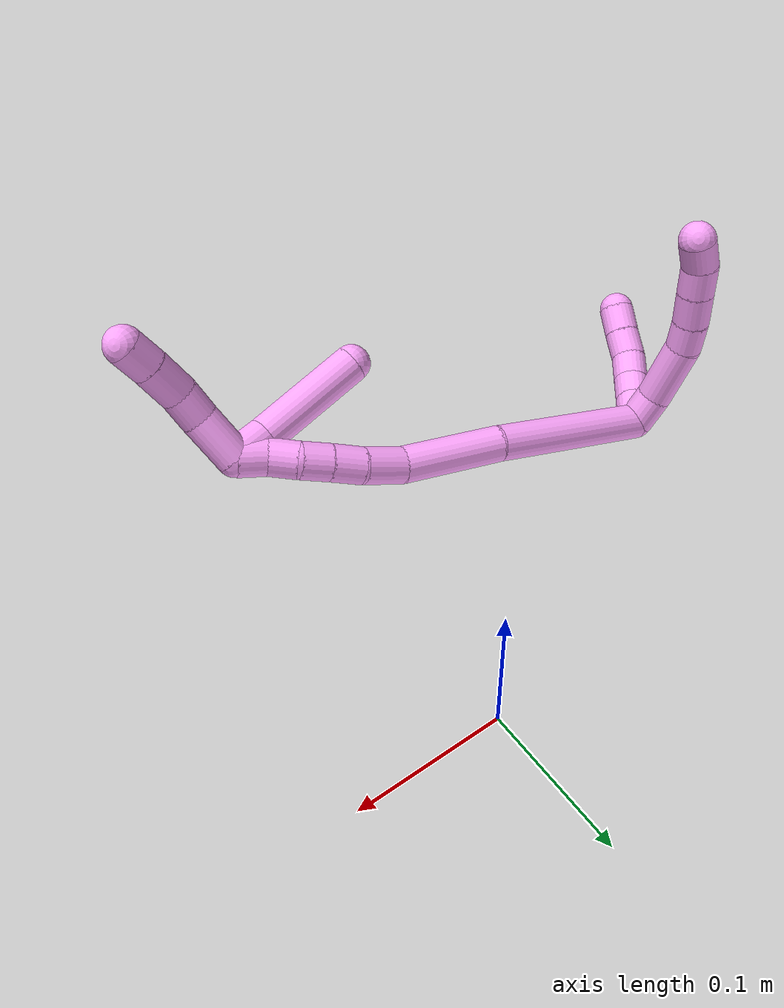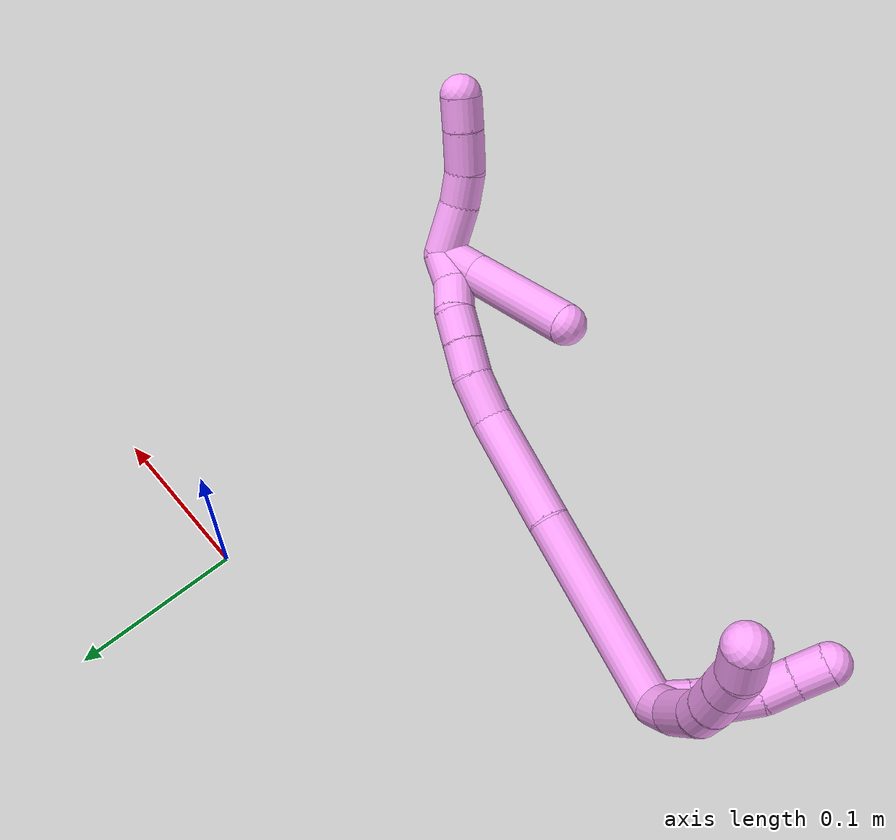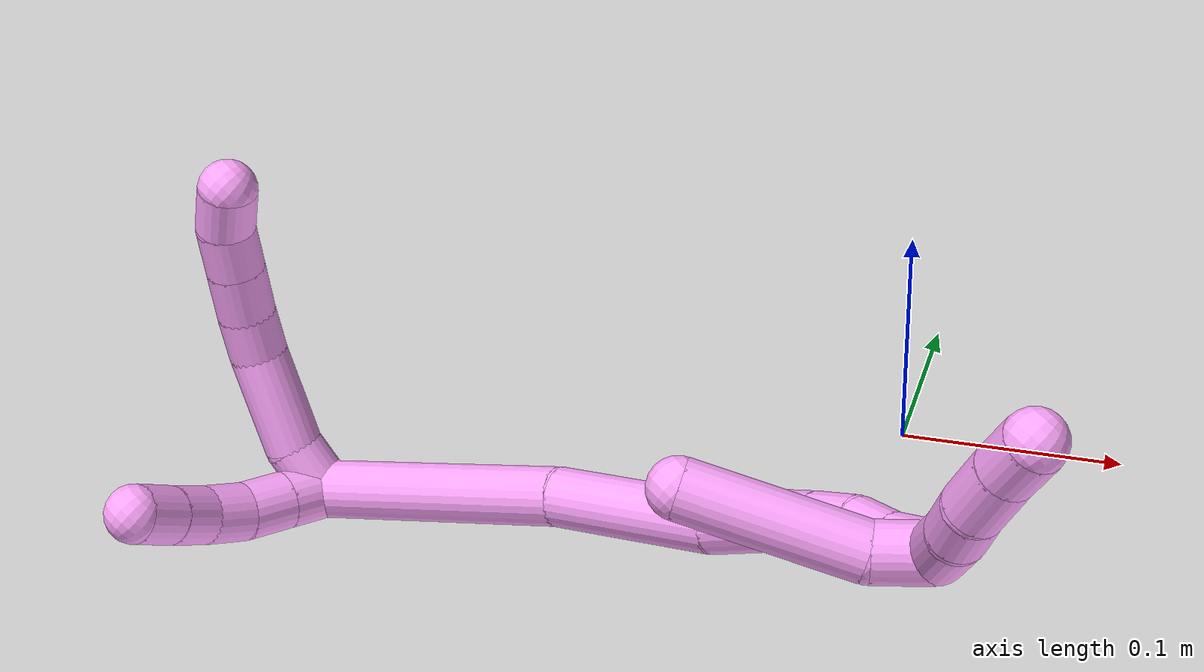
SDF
<sdf version="1.7">
 <world name="default">
  <model name="4">
   <static>0</static>
   <link name="4">
    <collision name="collision-cylinder-e_1_2_8">
     <pose>-0.009854 0.005466 -0.002407 -1.98564 -1.02585 1.42449</pose>
     <geometry><cylinder><radius>0.0125</radius><length>0.023045</length></cylinder></geometry>
     <surface>
      <friction><ode><mu>1.16</mu><mu2>1.16</mu2><slip1>0</slip1><slip2>0</slip2></ode></friction>
      <contact><ode><kp>1e+06</kp><kd>1</kd><max_vel>0</max_vel><min_depth>0.001</min_depth></ode></contact>
     </surface>
    </collision>
    <visual name="visual-cylinder-e_1_2_8">
     <pose>-0.009854 0.005466 -0.002407 -1.98564 -1.02585 1.42449</pose>
     <geometry><cylinder><radius>0.0125</radius><length>0.023045</length></cylinder></geometry>
     <material><ambient>1 0.65098 0.996078 1</ambient></material>
    </visual>
    <collision name="collision-cylinder-e_2_8_9">
     <pose>-0.035614 0.022244 -0.01481 -2.29449 -0.811592 1.52266</pose>
     <geometry><cylinder><radius>0.0125</radius><length>0.043858</length></cylinder></geometry>
     <surface>
      <friction><ode><mu>1.16</mu><mu2>1.16</mu2><slip1>0</slip1><slip2>0</slip2></ode></friction>
      <contact><ode><kp>1e+06</kp><kd>1</kd><max_vel>0</max_vel><min_depth>0.001</min_depth></ode></contact>
     </surface>
    </collision>
    <visual name="visual-cylinder-e_2_8_9">
     <pose>-0.035614 0.022244 -0.01481 -2.29449 -0.811592 1.52266</pose>
     <geometry><cylinder><radius>0.0125</radius><length>0.043858</length></cylinder></geometry>
     <material><ambient>1 0.65098 0.996078 1</ambient></material>
    </visual>
    <collision name="collision-cylinder-e_3_9_10">
     <pose>-0.057041 0.040312 -0.029874 -2.21446 -0.578881 1.07454</pose>
     <geometry><cylinder><radius>0.0125</radius><length>0.02018</length></cylinder></geometry>
     <surface>
      <friction><ode><mu>1.16</mu><mu2>1.16</mu2><slip1>0</slip1><slip2>0</slip2></ode></friction>
      <contact><ode><kp>1e+06</kp><kd>1</kd><max_vel>0</max_vel><min_depth>0.001</min_depth></ode></contact>
     </surface>
    </collision>
    <visual name="visual-cylinder-e_3_9_10">
     <pose>-0.057041 0.040312 -0.029874 -2.21446 -0.578881 1.07454</pose>
     <geometry><cylinder><radius>0.0125</radius><length>0.02018</length></cylinder></geometry>
     <material><ambient>1 0.65098 0.996078 1</ambient></material>
    </visual>
    <collision name="collision-cylinder-e_4_10_11">
     <pose>-0.067599 0.055108 -0.040801 -2.20051 -0.468732 0.877725</pose>
     <geometry><cylinder><radius>0.0125</radius><length>0.022302</length></cylinder></geometry>
     <surface>
      <friction><ode><mu>1.16</mu><mu2>1.16</mu2><slip1>0</slip1><slip2>0</slip2></ode></friction>
      <contact><ode><kp>1e+06</kp><kd>1</kd><max_vel>0</max_vel><min_depth>0.001</min_depth></ode></contact>
     </surface>
    </collision>
    <visual name="visual-cylinder-e_4_10_11">
     <pose>-0.067599 0.055108 -0.040801 -2.20051 -0.468732 0.877725</pose>
     <geometry><cylinder><radius>0.0125</radius><length>0.022302</length></cylinder></geometry>
     <material><ambient>1 0.65098 0.996078 1</ambient></material>
    </visual>
    <collision name="collision-cylinder-e_5_11_12">
     <pose>-0.077278 0.070477 -0.05198 -2.19871 -0.473647 0.884354</pose>
     <geometry><cylinder><radius>0.0125</radius><length>0.020353</length></cylinder></geometry>
     <surface>
      <friction><ode><mu>1.16</mu><mu2>1.16</mu2><slip1>0</slip1><slip2>0</slip2></ode></friction>
      <contact><ode><kp>1e+06</kp><kd>1</kd><max_vel>0</max_vel><min_depth>0.001</min_depth></ode></contact>
     </surface>
    </collision>
    <visual name="visual-cylinder-e_5_11_12">
     <pose>-0.077278 0.070477 -0.05198 -2.19871 -0.473647 0.884354</pose>
     <geometry><cylinder><radius>0.0125</radius><length>0.020353</length></cylinder></geometry>
     <material><ambient>1 0.65098 0.996078 1</ambient></material>
    </visual>
    <collision name="collision-cylinder-e_6_12_6">
     <pose>-0.083876 0.085197 -0.063946 -2.30317 -0.194307 0.430626</pose>
     <geometry><cylinder><radius>0.0125</radius><length>0.020262</length></cylinder></geometry>
     <surface>
      <friction><ode><mu>1.16</mu><mu2>1.16</mu2><slip1>0</slip1><slip2>0</slip2></ode></friction>
      <contact><ode><kp>1e+06</kp><kd>1</kd><max_vel>0</max_vel><min_depth>0.001</min_depth></ode></contact>
     </surface>
    </collision>
    <visual name="visual-cylinder-e_6_12_6">
     <pose>-0.083876 0.085197 -0.063946 -2.30317 -0.194307 0.430626</pose>
     <geometry><cylinder><radius>0.0125</radius><length>0.020262</length></cylinder></geometry>
     <material><ambient>1 0.65098 0.996078 1</ambient></material>
    </visual>
    <collision name="collision-cylinder-e_1_2_13">
     <pose>-0.002357 0.006802 0.006941 -0.775311 -0.237922 0.097531</pose>
     <geometry><cylinder><radius>0.0125</radius><length>0.02</length></cylinder></geometry>
     <surface>
      <friction><ode><mu>1.16</mu><mu2>1.16</mu2><slip1>0</slip1><slip2>0</slip2></ode></friction>
      <contact><ode><kp>1e+06</kp><kd>1</kd><max_vel>0</max_vel><min_depth>0.001</min_depth></ode></contact>
     </surface>
    </collision>
    <visual name="visual-cylinder-e_1_2_13">
     <pose>-0.002357 0.006802 0.006941 -0.775311 -0.237922 0.097531</pose>
     <geometry><cylinder><radius>0.0125</radius><length>0.02</length></cylinder></geometry>
     <material><ambient>1 0.65098 0.996078 1</ambient></material>
    </visual>
    <collision name="collision-cylinder-e_2_13_14">
     <pose>-0.007015 0.020452 0.020796 -0.780517 -0.232263 0.095901</pose>
     <geometry><cylinder><radius>0.0125</radius><length>0.02</length></cylinder></geometry>
     <surface>
      <friction><ode><mu>1.16</mu><mu2>1.16</mu2><slip1>0</slip1><slip2>0</slip2></ode></friction>
      <contact><ode><kp>1e+06</kp><kd>1</kd><max_vel>0</max_vel><min_depth>0.001</min_depth></ode></contact>
     </surface>
    </collision>
    <visual name="visual-cylinder-e_2_13_14">
     <pose>-0.007015 0.020452 0.020796 -0.780517 -0.232263 0.095901</pose>
     <geometry><cylinder><radius>0.0125</radius><length>0.02</length></cylinder></geometry>
     <material><ambient>1 0.65098 0.996078 1</ambient></material>
    </visual>
    <collision name="collision-cylinder-e_3_14_15">
     <pose>-0.012098 0.035369 0.032921 -0.997467 -0.281774 0.154188</pose>
     <geometry><cylinder><radius>0.0125</radius><length>0.02</length></cylinder></geometry>
     <surface>
      <friction><ode><mu>1.16</mu><mu2>1.16</mu2><slip1>0</slip1><slip2>0</slip2></ode></friction>
      <contact><ode><kp>1e+06</kp><kd>1</kd><max_vel>0</max_vel><min_depth>0.001</min_depth></ode></contact>
     </surface>
    </collision>
    <visual name="visual-cylinder-e_3_14_15">
     <pose>-0.012098 0.035369 0.032921 -0.997467 -0.281774 0.154188</pose>
     <geometry><cylinder><radius>0.0125</radius><length>0.02</length></cylinder></geometry>
     <material><ambient>1 0.65098 0.996078 1</ambient></material>
    </visual>
    <collision name="collision-cylinder-e_4_15_16">
     <pose>-0.016475 0.052756 0.041395 -1.23393 -0.160344 0.113859</pose>
     <geometry><cylinder><radius>0.0125</radius><length>0.02</length></cylinder></geometry>
     <surface>
      <friction><ode><mu>1.16</mu><mu2>1.16</mu2><slip1>0</slip1><slip2>0</slip2></ode></friction>
      <contact><ode><kp>1e+06</kp><kd>1</kd><max_vel>0</max_vel><min_depth>0.001</min_depth></ode></contact>
     </surface>
    </collision>
    <visual name="visual-cylinder-e_4_15_16">
     <pose>-0.016475 0.052756 0.041395 -1.23393 -0.160344 0.113859</pose>
     <geometry><cylinder><radius>0.0125</radius><length>0.02</length></cylinder></geometry>
     <material><ambient>1 0.65098 0.996078 1</ambient></material>
    </visual>
    <collision name="collision-cylinder-e_5_16_5">
     <pose>-0.020037 0.07134 0.047859 -1.23817 -0.197843 0.141196</pose>
     <geometry><cylinder><radius>0.0125</radius><length>0.02</length></cylinder></geometry>
     <surface>
      <friction><ode><mu>1.16</mu><mu2>1.16</mu2><slip1>0</slip1><slip2>0</slip2></ode></friction>
      <contact><ode><kp>1e+06</kp><kd>1</kd><max_vel>0</max_vel><min_depth>0.001</min_depth></ode></contact>
     </surface>
    </collision>
    <visual name="visual-cylinder-e_5_16_5">
     <pose>-0.020037 0.07134 0.047859 -1.23817 -0.197843 0.141196</pose>
     <geometry><cylinder><radius>0.0125</radius><length>0.02</length></cylinder></geometry>
     <material><ambient>1 0.65098 0.996078 1</ambient></material>
    </visual>
    <collision name="collision-cylinder-e_1_2_17">
     <pose>0.044049 0.014715 -0.036125 -2.75477 0.84603 -2.32088</pose>
     <geometry><cylinder><radius>0.0125</radius><length>0.117676</length></cylinder></geometry>
     <surface>
      <friction><ode><mu>1.16</mu><mu2>1.16</mu2><slip1>0</slip1><slip2>0</slip2></ode></friction>
      <contact><ode><kp>1e+06</kp><kd>1</kd><max_vel>0</max_vel><min_depth>0.001</min_depth></ode></contact>
     </surface>
    </collision>
    <visual name="visual-cylinder-e_1_2_17">
     <pose>0.044049 0.014715 -0.036125 -2.75477 0.84603 -2.32088</pose>
     <geometry><cylinder><radius>0.0125</radius><length>0.117676</length></cylinder></geometry>
     <material><ambient>1 0.65098 0.996078 1</ambient></material>
    </visual>
    <collision name="collision-cylinder-e_2_17_18">
     <pose>0.117502 0.037034 -0.090941 -2.75525 0.969361 -2.43023</pose>
     <geometry><cylinder><radius>0.0125</radius><length>0.071322</length></cylinder></geometry>
     <surface>
      <friction><ode><mu>1.16</mu><mu2>1.16</mu2><slip1>0</slip1><slip2>0</slip2></ode></friction>
      <contact><ode><kp>1e+06</kp><kd>1</kd><max_vel>0</max_vel><min_depth>0.001</min_depth></ode></contact>
     </surface>
    </collision>
    <visual name="visual-cylinder-e_2_17_18">
     <pose>0.117502 0.037034 -0.090941 -2.75525 0.969361 -2.43023</pose>
     <geometry><cylinder><radius>0.0125</radius><length>0.071322</length></cylinder></geometry>
     <material><ambient>1 0.65098 0.996078 1</ambient></material>
    </visual>
    <collision name="collision-cylinder-e_3_18_19">
     <pose>0.156694 0.049958 -0.118757 -2.6137 0.747351 -1.93466</pose>
     <geometry><cylinder><radius>0.0125</radius><length>0.028804</length></cylinder></geometry>
     <surface>
      <friction><ode><mu>1.16</mu><mu2>1.16</mu2><slip1>0</slip1><slip2>0</slip2></ode></friction>
      <contact><ode><kp>1e+06</kp><kd>1</kd><max_vel>0</max_vel><min_depth>0.001</min_depth></ode></contact>
     </surface>
    </collision>
    <visual name="visual-cylinder-e_3_18_19">
     <pose>0.156694 0.049958 -0.118757 -2.6137 0.747351 -1.93466</pose>
     <geometry><cylinder><radius>0.0125</radius><length>0.028804</length></cylinder></geometry>
     <material><ambient>1 0.65098 0.996078 1</ambient></material>
    </visual>
    <collision name="collision-cylinder-e_4_19_20">
     <pose>0.174162 0.060625 -0.133526 -2.38325 0.779255 -1.60087</pose>
     <geometry><cylinder><radius>0.0125</radius><length>0.021853</length></cylinder></geometry>
     <surface>
      <friction><ode><mu>1.16</mu><mu2>1.16</mu2><slip1>0</slip1><slip2>0</slip2></ode></friction>
      <contact><ode><kp>1e+06</kp><kd>1</kd><max_vel>0</max_vel><min_depth>0.001</min_depth></ode></contact>
     </surface>
    </collision>
    <visual name="visual-cylinder-e_4_19_20">
     <pose>0.174162 0.060625 -0.133526 -2.38325 0.779255 -1.60087</pose>
     <geometry><cylinder><radius>0.0125</radius><length>0.021853</length></cylinder></geometry>
     <material><ambient>1 0.65098 0.996078 1</ambient></material>
    </visual>
    <collision name="collision-cylinder-e_5_20_21">
     <pose>0.189227 0.070733 -0.144185 -2.38208 0.818343 -1.65364</pose>
     <geometry><cylinder><radius>0.0125</radius><length>0.020237</length></cylinder></geometry>
     <surface>
      <friction><ode><mu>1.16</mu><mu2>1.16</mu2><slip1>0</slip1><slip2>0</slip2></ode></friction>
      <contact><ode><kp>1e+06</kp><kd>1</kd><max_vel>0</max_vel><min_depth>0.001</min_depth></ode></contact>
     </surface>
    </collision>
    <visual name="visual-cylinder-e_5_20_21">
     <pose>0.189227 0.070733 -0.144185 -2.38208 0.818343 -1.65364</pose>
     <geometry><cylinder><radius>0.0125</radius><length>0.020237</length></cylinder></geometry>
     <material><ambient>1 0.65098 0.996078 1</ambient></material>
    </visual>
    <collision name="collision-cylinder-e_6_21_22">
     <pose>0.204763 0.080836 -0.151512 -1.97938 0.950591 -1.32935</pose>
     <geometry><cylinder><radius>0.0125</radius><length>0.020029</length></cylinder></geometry>
     <surface>
      <friction><ode><mu>1.16</mu><mu2>1.16</mu2><slip1>0</slip1><slip2>0</slip2></ode></friction>
      <contact><ode><kp>1e+06</kp><kd>1</kd><max_vel>0</max_vel><min_depth>0.001</min_depth></ode></contact>
     </surface>
    </collision>
    <visual name="visual-cylinder-e_6_21_22">
     <pose>0.204763 0.080836 -0.151512 -1.97938 0.950591 -1.32935</pose>
     <geometry><cylinder><radius>0.0125</radius><length>0.020029</length></cylinder></geometry>
     <material><ambient>1 0.65098 0.996078 1</ambient></material>
    </visual>
    <collision name="collision-cylinder-e_7_22_1">
     <pose>0.221012 0.089906 -0.158439 -2.46188 0.938597 -1.92381</pose>
     <geometry><cylinder><radius>0.0125</radius><length>0.020079</length></cylinder></geometry>
     <surface>
      <friction><ode><mu>1.16</mu><mu2>1.16</mu2><slip1>0</slip1><slip2>0</slip2></ode></friction>
      <contact><ode><kp>1e+06</kp><kd>1</kd><max_vel>0</max_vel><min_depth>0.001</min_depth></ode></contact>
     </surface>
    </collision>
    <visual name="visual-cylinder-e_7_22_1">
     <pose>0.221012 0.089906 -0.158439 -2.46188 0.938597 -1.92381</pose>
     <geometry><cylinder><radius>0.0125</radius><length>0.020079</length></cylinder></geometry>
     <material><ambient>1 0.65098 0.996078 1</ambient></material>
    </visual>
    <collision name="collision-cylinder-e_1_1_23">
     <pose>0.231988 0.109087 -0.168362 -1.90179 0.174277 -0.243575</pose>
     <geometry><cylinder><radius>0.0125</radius><length>0.033179</length></cylinder></geometry>
     <surface>
      <friction><ode><mu>1.16</mu><mu2>1.16</mu2><slip1>0</slip1><slip2>0</slip2></ode></friction>
      <contact><ode><kp>1e+06</kp><kd>1</kd><max_vel>0</max_vel><min_depth>0.001</min_depth></ode></contact>
     </surface>
    </collision>
    <visual name="visual-cylinder-e_1_1_23">
     <pose>0.231988 0.109087 -0.168362 -1.90179 0.174277 -0.243575</pose>
     <geometry><cylinder><radius>0.0125</radius><length>0.033179</length></cylinder></geometry>
     <material><ambient>1 0.65098 0.996078 1</ambient></material>
    </visual>
    <collision name="collision-cylinder-e_2_23_24">
     <pose>0.235518 0.133655 -0.178713 -2.07592 0.062722 -0.106291</pose>
     <geometry><cylinder><radius>0.0125</radius><length>0.020877</length></cylinder></geometry>
     <surface>
      <friction><ode><mu>1.16</mu><mu2>1.16</mu2><slip1>0</slip1><slip2>0</slip2></ode></friction>
      <contact><ode><kp>1e+06</kp><kd>1</kd><max_vel>0</max_vel><min_depth>0.001</min_depth></ode></contact>
     </surface>
    </collision>
    <visual name="visual-cylinder-e_2_23_24">
     <pose>0.235518 0.133655 -0.178713 -2.07592 0.062722 -0.106291</pose>
     <geometry><cylinder><radius>0.0125</radius><length>0.020877</length></cylinder></geometry>
     <material><ambient>1 0.65098 0.996078 1</ambient></material>
    </visual>
    <collision name="collision-cylinder-e_3_24_25">
     <pose>0.237501 0.15247 -0.192109 -2.2819 0.103372 -0.224739</pose>
     <geometry><cylinder><radius>0.0125</radius><length>0.025737</length></cylinder></geometry>
     <surface>
      <friction><ode><mu>1.16</mu><mu2>1.16</mu2><slip1>0</slip1><slip2>0</slip2></ode></friction>
      <contact><ode><kp>1e+06</kp><kd>1</kd><max_vel>0</max_vel><min_depth>0.001</min_depth></ode></contact>
     </surface>
    </collision>
    <visual name="visual-cylinder-e_3_24_25">
     <pose>0.237501 0.15247 -0.192109 -2.2819 0.103372 -0.224739</pose>
     <geometry><cylinder><radius>0.0125</radius><length>0.025737</length></cylinder></geometry>
     <material><ambient>1 0.65098 0.996078 1</ambient></material>
    </visual>
    <collision name="collision-cylinder-e_4_25_4">
     <pose>0.240375 0.169679 -0.207041 -2.29004 0.153643 -0.336241</pose>
     <geometry><cylinder><radius>0.0125</radius><length>0.020206</length></cylinder></geometry>
     <surface>
      <friction><ode><mu>1.16</mu><mu2>1.16</mu2><slip1>0</slip1><slip2>0</slip2></ode></friction>
      <contact><ode><kp>1e+06</kp><kd>1</kd><max_vel>0</max_vel><min_depth>0.001</min_depth></ode></contact>
     </surface>
    </collision>
    <visual name="visual-cylinder-e_4_25_4">
     <pose>0.240375 0.169679 -0.207041 -2.29004 0.153643 -0.336241</pose>
     <geometry><cylinder><radius>0.0125</radius><length>0.020206</length></cylinder></geometry>
     <material><ambient>1 0.65098 0.996078 1</ambient></material>
    </visual>
    <collision name="collision-cylinder-e_1_1_26">
     <pose>0.220267 0.096481 -0.154456 -0.31964 -0.773583 0.131124</pose>
     <geometry><cylinder><radius>0.0125</radius><length>0.025316</length></cylinder></geometry>
     <surface>
      <friction><ode><mu>1.16</mu><mu2>1.16</mu2><slip1>0</slip1><slip2>0</slip2></ode></friction>
      <contact><ode><kp>1e+06</kp><kd>1</kd><max_vel>0</max_vel><min_depth>0.001</min_depth></ode></contact>
     </surface>
    </collision>
    <visual name="visual-cylinder-e_1_1_26">
     <pose>0.220267 0.096481 -0.154456 -0.31964 -0.773583 0.131124</pose>
     <geometry><cylinder><radius>0.0125</radius><length>0.025316</length></cylinder></geometry>
     <material><ambient>1 0.65098 0.996078 1</ambient></material>
    </visual>
    <collision name="collision-cylinder-e_2_26_3">
     <pose>0.179014 0.108924 -0.129984 -0.543785 -1.05093 0.320541</pose>
     <geometry><cylinder><radius>0.0125</radius><length>0.074684</length></cylinder></geometry>
     <surface>
      <friction><ode><mu>1.16</mu><mu2>1.16</mu2><slip1>0</slip1><slip2>0</slip2></ode></friction>
      <contact><ode><kp>1e+06</kp><kd>1</kd><max_vel>0</max_vel><min_depth>0.001</min_depth></ode></contact>
     </surface>
    </collision>
    <visual name="visual-cylinder-e_2_26_3">
     <pose>0.179014 0.108924 -0.129984 -0.543785 -1.05093 0.320541</pose>
     <geometry><cylinder><radius>0.0125</radius><length>0.074684</length></cylinder></geometry>
     <material><ambient>1 0.65098 0.996078 1</ambient></material>
    </visual>
    <collision name="collision-sphere-3">
     <pose>0.146606 0.118521 -0.11411 0 -0 0</pose>
     <geometry><sphere><radius>0.0125</radius></sphere></geometry>
     <surface>
      <friction><ode><mu>1.16</mu><mu2>1.16</mu2><slip1>0</slip1><slip2>0</slip2></ode></friction>
      <contact><ode><kp>1e+06</kp><kd>1</kd><max_vel>0</max_vel><min_depth>0.001</min_depth></ode></contact>
     </surface>
    </collision>
    <visual name="visual-sphere-3">
     <pose>0.146606 0.118521 -0.11411 0 -0 0</pose>
     <geometry><sphere><radius>0.0125</radius></sphere></geometry>
     <material><ambient>1 0.65098 0.996078 1</ambient></material>
    </visual>
    <collision name="collision-sphere-26">
     <pose>0.211423 0.099326 -0.145859 0 -0 0</pose>
     <geometry><sphere><radius>0.0125</radius></sphere></geometry>
     <surface>
      <friction><ode><mu>1.16</mu><mu2>1.16</mu2><slip1>0</slip1><slip2>0</slip2></ode></friction>
      <contact><ode><kp>1e+06</kp><kd>1</kd><max_vel>0</max_vel><min_depth>0.001</min_depth></ode></contact>
     </surface>
    </collision>
    <visual name="visual-sphere-26">
     <pose>0.211423 0.099326 -0.145859 0 -0 0</pose>
     <geometry><sphere><radius>0.0125</radius></sphere></geometry>
     <material><ambient>1 0.65098 0.996078 1</ambient></material>
    </visual>
    <collision name="collision-sphere-4">
     <pose>0.241921 0.17719 -0.213618 0 -0 0</pose>
     <geometry><sphere><radius>0.0125</radius></sphere></geometry>
     <surface>
      <friction><ode><mu>1.16</mu><mu2>1.16</mu2><slip1>0</slip1><slip2>0</slip2></ode></friction>
      <contact><ode><kp>1e+06</kp><kd>1</kd><max_vel>0</max_vel><min_depth>0.001</min_depth></ode></contact>
     </surface>
    </collision>
    <visual name="visual-sphere-4">
     <pose>0.241921 0.17719 -0.213618 0 -0 0</pose>
     <geometry><sphere><radius>0.0125</radius></sphere></geometry>
     <material><ambient>1 0.65098 0.996078 1</ambient></material>
    </visual>
    <collision name="collision-sphere-25">
     <pose>0.238828 0.162168 -0.200463 0 -0 0</pose>
     <geometry><sphere><radius>0.0125</radius></sphere></geometry>
     <surface>
      <friction><ode><mu>1.16</mu><mu2>1.16</mu2><slip1>0</slip1><slip2>0</slip2></ode></friction>
      <contact><ode><kp>1e+06</kp><kd>1</kd><max_vel>0</max_vel><min_depth>0.001</min_depth></ode></contact>
     </surface>
    </collision>
    <visual name="visual-sphere-25">
     <pose>0.238828 0.162168 -0.200463 0 -0 0</pose>
     <geometry><sphere><radius>0.0125</radius></sphere></geometry>
     <material><ambient>1 0.65098 0.996078 1</ambient></material>
    </visual>
    <collision name="collision-sphere-24">
     <pose>0.236173 0.142772 -0.183755 0 -0 0</pose>
     <geometry><sphere><radius>0.0125</radius></sphere></geometry>
     <surface>
      <friction><ode><mu>1.16</mu><mu2>1.16</mu2><slip1>0</slip1><slip2>0</slip2></ode></friction>
      <contact><ode><kp>1e+06</kp><kd>1</kd><max_vel>0</max_vel><min_depth>0.001</min_depth></ode></contact>
     </surface>
    </collision>
    <visual name="visual-sphere-24">
     <pose>0.236173 0.142772 -0.183755 0 -0 0</pose>
     <geometry><sphere><radius>0.0125</radius></sphere></geometry>
     <material><ambient>1 0.65098 0.996078 1</ambient></material>
    </visual>
    <collision name="collision-sphere-23">
     <pose>0.234864 0.124538 -0.173672 0 -0 0</pose>
     <geometry><sphere><radius>0.0125</radius></sphere></geometry>
     <surface>
      <friction><ode><mu>1.16</mu><mu2>1.16</mu2><slip1>0</slip1><slip2>0</slip2></ode></friction>
      <contact><ode><kp>1e+06</kp><kd>1</kd><max_vel>0</max_vel><min_depth>0.001</min_depth></ode></contact>
     </surface>
    </collision>
    <visual name="visual-sphere-23">
     <pose>0.234864 0.124538 -0.173672 0 -0 0</pose>
     <geometry><sphere><radius>0.0125</radius></sphere></geometry>
     <material><ambient>1 0.65098 0.996078 1</ambient></material>
    </visual>
    <collision name="collision-sphere-1">
     <pose>0.229111 0.093635 -0.163053 0 -0 0</pose>
     <geometry><sphere><radius>0.0125</radius></sphere></geometry>
     <surface>
      <friction><ode><mu>1.16</mu><mu2>1.16</mu2><slip1>0</slip1><slip2>0</slip2></ode></friction>
      <contact><ode><kp>1e+06</kp><kd>1</kd><max_vel>0</max_vel><min_depth>0.001</min_depth></ode></contact>
     </surface>
    </collision>
    <visual name="visual-sphere-1">
     <pose>0.229111 0.093635 -0.163053 0 -0 0</pose>
     <geometry><sphere><radius>0.0125</radius></sphere></geometry>
     <material><ambient>1 0.65098 0.996078 1</ambient></material>
    </visual>
    <collision name="collision-sphere-22">
     <pose>0.212913 0.086177 -0.153825 0 -0 0</pose>
     <geometry><sphere><radius>0.0125</radius></sphere></geometry>
     <surface>
      <friction><ode><mu>1.16</mu><mu2>1.16</mu2><slip1>0</slip1><slip2>0</slip2></ode></friction>
      <contact><ode><kp>1e+06</kp><kd>1</kd><max_vel>0</max_vel><min_depth>0.001</min_depth></ode></contact>
     </surface>
    </collision>
    <visual name="visual-sphere-22">
     <pose>0.212913 0.086177 -0.153825 0 -0 0</pose>
     <geometry><sphere><radius>0.0125</radius></sphere></geometry>
     <material><ambient>1 0.65098 0.996078 1</ambient></material>
    </visual>
    <collision name="collision-sphere-21">
     <pose>0.196614 0.075495 -0.1492 0 -0 0</pose>
     <geometry><sphere><radius>0.0125</radius></sphere></geometry>
     <surface>
      <friction><ode><mu>1.16</mu><mu2>1.16</mu2><slip1>0</slip1><slip2>0</slip2></ode></friction>
      <contact><ode><kp>1e+06</kp><kd>1</kd><max_vel>0</max_vel><min_depth>0.001</min_depth></ode></contact>
     </surface>
    </collision>
    <visual name="visual-sphere-21">
     <pose>0.196614 0.075495 -0.1492 0 -0 0</pose>
     <geometry><sphere><radius>0.0125</radius></sphere></geometry>
     <material><ambient>1 0.65098 0.996078 1</ambient></material>
    </visual>
    <collision name="collision-sphere-12">
     <pose>-0.08192 0.077805 -0.0573 0 -0 0</pose>
     <geometry><sphere><radius>0.0125</radius></sphere></geometry>
     <surface>
      <friction><ode><mu>1.16</mu><mu2>1.16</mu2><slip1>0</slip1><slip2>0</slip2></ode></friction>
      <contact><ode><kp>1e+06</kp><kd>1</kd><max_vel>0</max_vel><min_depth>0.001</min_depth></ode></contact>
     </surface>
    </collision>
    <visual name="visual-sphere-12">
     <pose>-0.08192 0.077805 -0.0573 0 -0 0</pose>
     <geometry><sphere><radius>0.0125</radius></sphere></geometry>
     <material><ambient>1 0.65098 0.996078 1</ambient></material>
    </visual>
    <collision name="collision-sphere-11">
     <pose>-0.072636 0.063148 -0.04666 0 -0 0</pose>
     <geometry><sphere><radius>0.0125</radius></sphere></geometry>
     <surface>
      <friction><ode><mu>1.16</mu><mu2>1.16</mu2><slip1>0</slip1><slip2>0</slip2></ode></friction>
      <contact><ode><kp>1e+06</kp><kd>1</kd><max_vel>0</max_vel><min_depth>0.001</min_depth></ode></contact>
     </surface>
    </collision>
    <visual name="visual-sphere-11">
     <pose>-0.072636 0.063148 -0.04666 0 -0 0</pose>
     <geometry><sphere><radius>0.0125</radius></sphere></geometry>
     <material><ambient>1 0.65098 0.996078 1</ambient></material>
    </visual>
    <collision name="collision-sphere-10">
     <pose>-0.062561 0.047068 -0.034942 0 -0 0</pose>
     <geometry><sphere><radius>0.0125</radius></sphere></geometry>
     <surface>
      <friction><ode><mu>1.16</mu><mu2>1.16</mu2><slip1>0</slip1><slip2>0</slip2></ode></friction>
      <contact><ode><kp>1e+06</kp><kd>1</kd><max_vel>0</max_vel><min_depth>0.001</min_depth></ode></contact>
     </surface>
    </collision>
    <visual name="visual-sphere-10">
     <pose>-0.062561 0.047068 -0.034942 0 -0 0</pose>
     <geometry><sphere><radius>0.0125</radius></sphere></geometry>
     <material><ambient>1 0.65098 0.996078 1</ambient></material>
    </visual>
    <collision name="collision-sphere-9">
     <pose>-0.051521 0.033556 -0.024805 0 -0 0</pose>
     <geometry><sphere><radius>0.0125</radius></sphere></geometry>
     <surface>
      <friction><ode><mu>1.16</mu><mu2>1.16</mu2><slip1>0</slip1><slip2>0</slip2></ode></friction>
      <contact><ode><kp>1e+06</kp><kd>1</kd><max_vel>0</max_vel><min_depth>0.001</min_depth></ode></contact>
     </surface>
    </collision>
    <visual name="visual-sphere-9">
     <pose>-0.051521 0.033556 -0.024805 0 -0 0</pose>
     <geometry><sphere><radius>0.0125</radius></sphere></geometry>
     <material><ambient>1 0.65098 0.996078 1</ambient></material>
    </visual>
    <collision name="collision-sphere-2">
     <geometry><sphere><radius>0.0125</radius></sphere></geometry>
     <surface>
      <friction><ode><mu>1.16</mu><mu2>1.16</mu2><slip1>0</slip1><slip2>0</slip2></ode></friction>
      <contact><ode><kp>1e+06</kp><kd>1</kd><max_vel>0</max_vel><min_depth>0.001</min_depth></ode></contact>
     </surface>
    </collision>
    <visual name="visual-sphere-2">
     <geometry><sphere><radius>0.0125</radius></sphere></geometry>
     <material><ambient>1 0.65098 0.996078 1</ambient></material>
    </visual>
    <collision name="collision-sphere-19">
     <pose>0.166483 0.055279 -0.127883 0 -0 0</pose>
     <geometry><sphere><radius>0.0125</radius></sphere></geometry>
     <surface>
      <friction><ode><mu>1.16</mu><mu2>1.16</mu2><slip1>0</slip1><slip2>0</slip2></ode></friction>
      <contact><ode><kp>1e+06</kp><kd>1</kd><max_vel>0</max_vel><min_depth>0.001</min_depth></ode></contact>
     </surface>
    </collision>
    <visual name="visual-sphere-19">
     <pose>0.166483 0.055279 -0.127883 0 -0 0</pose>
     <geometry><sphere><radius>0.0125</radius></sphere></geometry>
     <material><ambient>1 0.65098 0.996078 1</ambient></material>
    </visual>
    <collision name="collision-sphere-8">
     <pose>-0.019707 0.010933 -0.004815 0 -0 0</pose>
     <geometry><sphere><radius>0.0125</radius></sphere></geometry>
     <surface>
      <friction><ode><mu>1.16</mu><mu2>1.16</mu2><slip1>0</slip1><slip2>0</slip2></ode></friction>
      <contact><ode><kp>1e+06</kp><kd>1</kd><max_vel>0</max_vel><min_depth>0.001</min_depth></ode></contact>
     </surface>
    </collision>
    <visual name="visual-sphere-8">
     <pose>-0.019707 0.010933 -0.004815 0 -0 0</pose>
     <geometry><sphere><radius>0.0125</radius></sphere></geometry>
     <material><ambient>1 0.65098 0.996078 1</ambient></material>
    </visual>
    <collision name="collision-sphere-6">
     <pose>-0.085832 0.092588 -0.070593 0 -0 0</pose>
     <geometry><sphere><radius>0.0125</radius></sphere></geometry>
     <surface>
      <friction><ode><mu>1.16</mu><mu2>1.16</mu2><slip1>0</slip1><slip2>0</slip2></ode></friction>
      <contact><ode><kp>1e+06</kp><kd>1</kd><max_vel>0</max_vel><min_depth>0.001</min_depth></ode></contact>
     </surface>
    </collision>
    <visual name="visual-sphere-6">
     <pose>-0.085832 0.092588 -0.070593 0 -0 0</pose>
     <geometry><sphere><radius>0.0125</radius></sphere></geometry>
     <material><ambient>1 0.65098 0.996078 1</ambient></material>
    </visual>
    <collision name="collision-sphere-13">
     <pose>-0.004714 0.013604 0.013882 0 -0 0</pose>
     <geometry><sphere><radius>0.0125</radius></sphere></geometry>
     <surface>
      <friction><ode><mu>1.16</mu><mu2>1.16</mu2><slip1>0</slip1><slip2>0</slip2></ode></friction>
      <contact><ode><kp>1e+06</kp><kd>1</kd><max_vel>0</max_vel><min_depth>0.001</min_depth></ode></contact>
     </surface>
    </collision>
    <visual name="visual-sphere-13">
     <pose>-0.004714 0.013604 0.013882 0 -0 0</pose>
     <geometry><sphere><radius>0.0125</radius></sphere></geometry>
     <material><ambient>1 0.65098 0.996078 1</ambient></material>
    </visual>
    <collision name="collision-sphere-14">
     <pose>-0.009317 0.027299 0.027711 0 -0 0</pose>
     <geometry><sphere><radius>0.0125</radius></sphere></geometry>
     <surface>
      <friction><ode><mu>1.16</mu><mu2>1.16</mu2><slip1>0</slip1><slip2>0</slip2></ode></friction>
      <contact><ode><kp>1e+06</kp><kd>1</kd><max_vel>0</max_vel><min_depth>0.001</min_depth></ode></contact>
     </surface>
    </collision>
    <visual name="visual-sphere-14">
     <pose>-0.009317 0.027299 0.027711 0 -0 0</pose>
     <geometry><sphere><radius>0.0125</radius></sphere></geometry>
     <material><ambient>1 0.65098 0.996078 1</ambient></material>
    </visual>
    <collision name="collision-sphere-15">
     <pose>-0.014878 0.043439 0.038132 0 -0 0</pose>
     <geometry><sphere><radius>0.0125</radius></sphere></geometry>
     <surface>
      <friction><ode><mu>1.16</mu><mu2>1.16</mu2><slip1>0</slip1><slip2>0</slip2></ode></friction>
      <contact><ode><kp>1e+06</kp><kd>1</kd><max_vel>0</max_vel><min_depth>0.001</min_depth></ode></contact>
     </surface>
    </collision>
    <visual name="visual-sphere-15">
     <pose>-0.014878 0.043439 0.038132 0 -0 0</pose>
     <geometry><sphere><radius>0.0125</radius></sphere></geometry>
     <material><ambient>1 0.65098 0.996078 1</ambient></material>
    </visual>
    <collision name="collision-sphere-16">
     <pose>-0.018072 0.062073 0.044658 0 -0 0</pose>
     <geometry><sphere><radius>0.0125</radius></sphere></geometry>
     <surface>
      <friction><ode><mu>1.16</mu><mu2>1.16</mu2><slip1>0</slip1><slip2>0</slip2></ode></friction>
      <contact><ode><kp>1e+06</kp><kd>1</kd><max_vel>0</max_vel><min_depth>0.001</min_depth></ode></contact>
     </surface>
    </collision>
    <visual name="visual-sphere-16">
     <pose>-0.018072 0.062073 0.044658 0 -0 0</pose>
     <geometry><sphere><radius>0.0125</radius></sphere></geometry>
     <material><ambient>1 0.65098 0.996078 1</ambient></material>
    </visual>
    <collision name="collision-sphere-5">
     <pose>-0.022003 0.080608 0.051061 0 -0 0</pose>
     <geometry><sphere><radius>0.0125</radius></sphere></geometry>
     <surface>
      <friction><ode><mu>1.16</mu><mu2>1.16</mu2><slip1>0</slip1><slip2>0</slip2></ode></friction>
      <contact><ode><kp>1e+06</kp><kd>1</kd><max_vel>0</max_vel><min_depth>0.001</min_depth></ode></contact>
     </surface>
    </collision>
    <visual name="visual-sphere-5">
     <pose>-0.022003 0.080608 0.051061 0 -0 0</pose>
     <geometry><sphere><radius>0.0125</radius></sphere></geometry>
     <material><ambient>1 0.65098 0.996078 1</ambient></material>
    </visual>
    <collision name="collision-sphere-17">
     <pose>0.088098 0.029431 -0.07225 0 -0 0</pose>
     <geometry><sphere><radius>0.0125</radius></sphere></geometry>
     <surface>
      <friction><ode><mu>1.16</mu><mu2>1.16</mu2><slip1>0</slip1><slip2>0</slip2></ode></friction>
      <contact><ode><kp>1e+06</kp><kd>1</kd><max_vel>0</max_vel><min_depth>0.001</min_depth></ode></contact>
     </surface>
    </collision>
    <visual name="visual-sphere-17">
     <pose>0.088098 0.029431 -0.07225 0 -0 0</pose>
     <geometry><sphere><radius>0.0125</radius></sphere></geometry>
     <material><ambient>1 0.65098 0.996078 1</ambient></material>
    </visual>
    <collision name="collision-sphere-18">
     <pose>0.146905 0.044637 -0.109632 0 -0 0</pose>
     <geometry><sphere><radius>0.0125</radius></sphere></geometry>
     <surface>
      <friction><ode><mu>1.16</mu><mu2>1.16</mu2><slip1>0</slip1><slip2>0</slip2></ode></friction>
      <contact><ode><kp>1e+06</kp><kd>1</kd><max_vel>0</max_vel><min_depth>0.001</min_depth></ode></contact>
     </surface>
    </collision>
    <visual name="visual-sphere-18">
     <pose>0.146905 0.044637 -0.109632 0 -0 0</pose>
     <geometry><sphere><radius>0.0125</radius></sphere></geometry>
     <material><ambient>1 0.65098 0.996078 1</ambient></material>
    </visual>
    <collision name="collision-sphere-20">
     <pose>0.18184 0.065971 -0.13917 0 -0 0</pose>
     <geometry><sphere><radius>0.0125</radius></sphere></geometry>
     <surface>
      <friction><ode><mu>1.16</mu><mu2>1.16</mu2><slip1>0</slip1><slip2>0</slip2></ode></friction>
      <contact><ode><kp>1e+06</kp><kd>1</kd><max_vel>0</max_vel><min_depth>0.001</min_depth></ode></contact>
     </surface>
    </collision>
    <visual name="visual-sphere-20">
     <pose>0.18184 0.065971 -0.13917 0 -0 0</pose>
     <geometry><sphere><radius>0.0125</radius></sphere></geometry>
     <material><ambient>1 0.65098 0.996078 1</ambient></material>
    </visual>
    <inertial>
     <pose>0.090535 0.061829 -0.079794 0 -0 0</pose>
     <mass>0.75</mass>
     <inertia>
      <ixx>-0.000105</ixx>
      <ixy>0</ixy>
      <ixz>0</ixz>
      <iyy>0.000155</iyy>
      <iyz>0</iyz>
      <izz>-0.000189</izz>
     </inertia>
    </inertial>
   </link>
   <pose>-0.23137 -0.129078 0.01278 2.36381 0.44855 -0.446839</pose>
  </model>
 </world>
</sdf>
